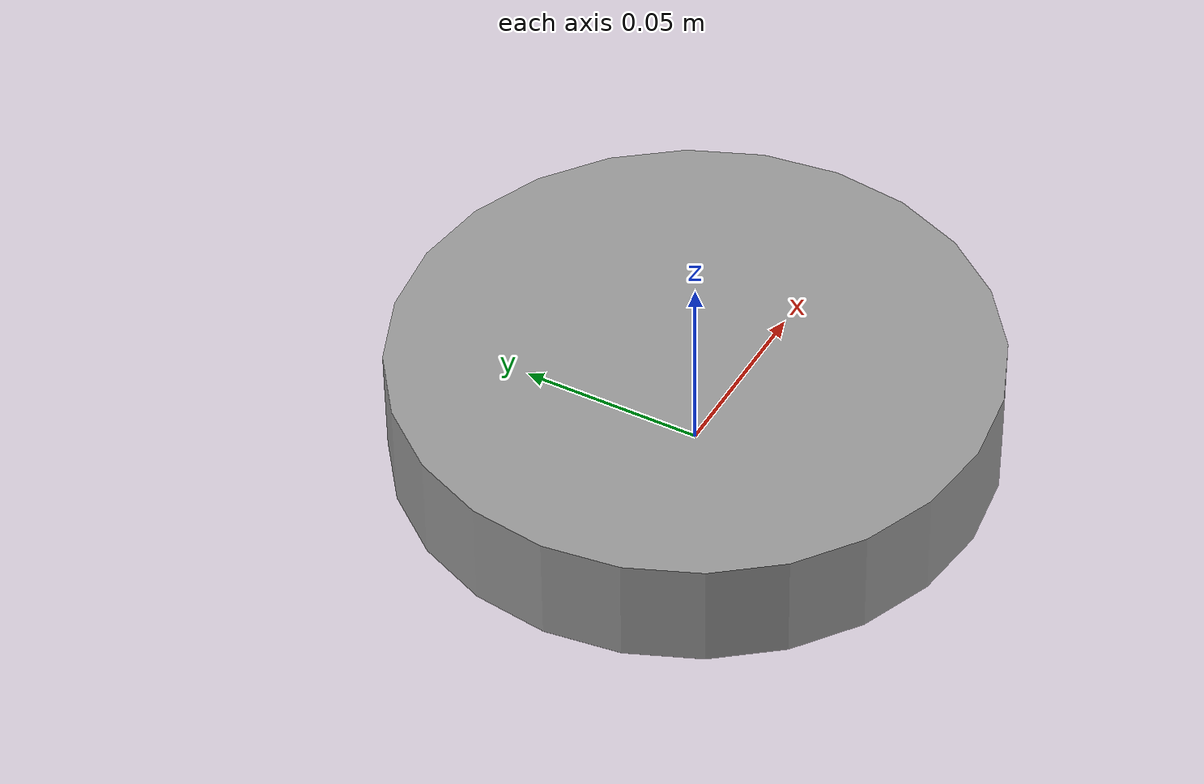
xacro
<?xml version="1.0"?>
<robot xmlns:xacro="http://www.ros.org/wiki/xacro">

    <xacro:property name="scan_radius" value="0.08" />
    <xacro:property name="scan_height" value="0.03" />

     <link name="scan_link">
        <visual>
            <geometry>
                <cylinder radius="${scan_radius}" length="${scan_height}" />
            </geometry>
            <origin xyz="0 0 ${scan_height/2}" rpy="0 0 0" />
            <material name="grey" />
        </visual>
        <collision>
            <geometry>
                <sphere radius="${scan_radius}"/>
            </geometry>
            <origin xyz="0 0 0" rpy="0 0 0" />
        </collision>
        <xacro:cylinder_inertia m="0.1" r="${scan_radius}" length="${scan_height}"
                                o_xyz="0 0 0" o_rpy="${pi/2.0} 0 0"/>
    </link>

</robot>
